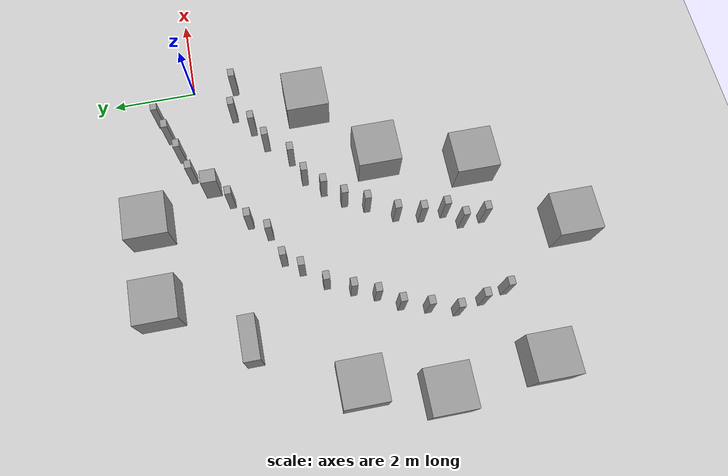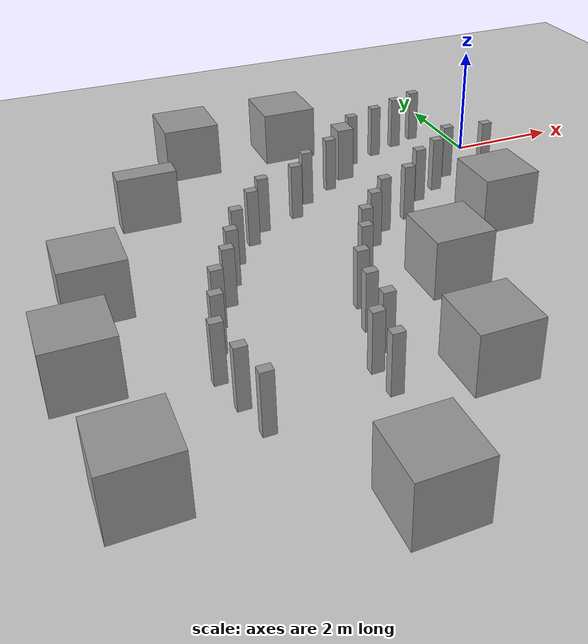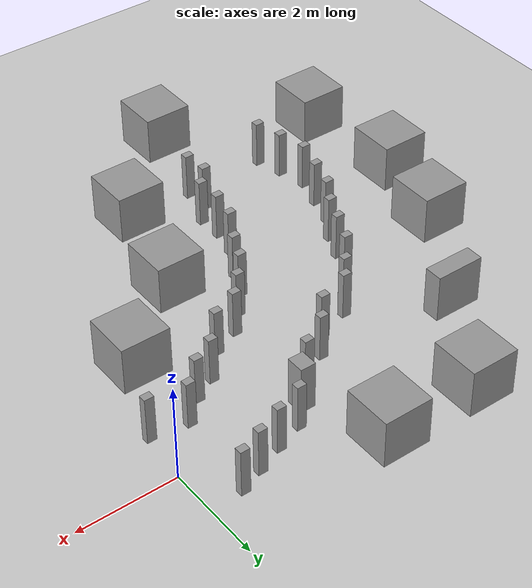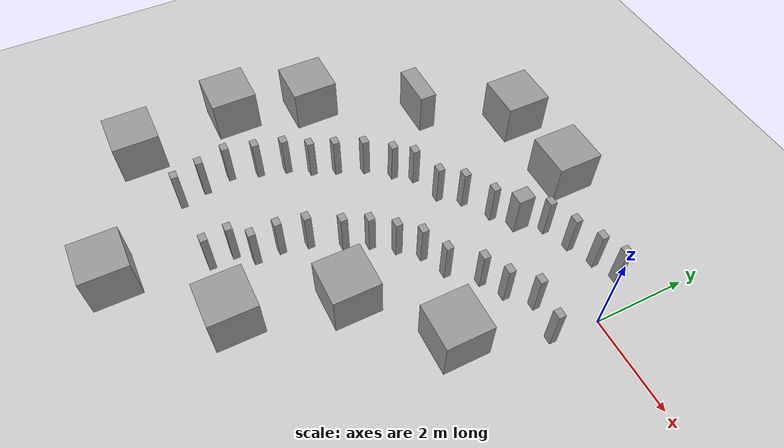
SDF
<sdf version="1.6">
 <world name="default">
  <light name="sun" type="directional">
   <pose>0 0 10 0 -0 0</pose>
   <diffuse>0.8 0.8 0.8 1</diffuse>
   <specular>0.1 0.1 0.1 1</specular>
   <attenuation>
    <range>1000</range>
    <constant>0.9</constant>
    <linear>0.01</linear>
    <quadratic>0.001</quadratic>
   </attenuation>
   <direction>-0.5 0.5 -1</direction>
  </light>
  <model name="ground_plane">
   <static>1</static>
   <link name="link">
    <collision name="collision">
     <geometry><plane><normal>0 0 1</normal><size>100 100</size></plane></geometry>
     <surface><friction><ode><mu>100</mu><mu2>50</mu2></ode></friction></surface>
    </collision>
    <visual name="visual">
     <cast_shadows>0</cast_shadows>
     <geometry><plane><normal>0 0 1</normal><size>100 100</size></plane></geometry>
     <material>
      <script><uri>file://media/materials/scripts/gazebo.material</uri><name>Gazebo/Grey</name></script>
     </material>
    </visual>
   </link>
  </model>
  <gravity>0 0 -9.8</gravity>
  <magnetic_field>6e-06 2.3e-05 -4.2e-05</magnetic_field>
  <atmosphere type="adiabatic"/>
  <physics name="default_physics" default="0" type="ode">
   <max_step_size>0.001</max_step_size>
   <real_time_factor>1</real_time_factor>
   <real_time_update_rate>1000</real_time_update_rate>
  </physics>
  <scene><ambient>0.4 0.4 0.4 1</ambient><background>0.7 0.7 0.7 1</background><shadows>1</shadows></scene>
  <spherical_coordinates>
   <surface_model>EARTH_WGS84</surface_model>
   <latitude_deg>0</latitude_deg>
   <longitude_deg>0</longitude_deg>
   <elevation>0</elevation>
   <heading_deg>0</heading_deg>
  </spherical_coordinates>
  <model name="unit_box_0_clone">
   <pose>-2.29678 0.276489 0.5 -0 1e-06 -0.000139</pose>
   <link name="link">
    <inertial>
     <mass>1</mass>
     <inertia>
      <ixx>0.166667</ixx>
      <ixy>0</ixy>
      <ixz>0</ixz>
      <iyy>0.166667</iyy>
      <iyz>0</iyz>
      <izz>0.166667</izz>
     </inertia>
    </inertial>
    <collision name="collision"><geometry><box><size>0.193042 0.14982 1</size></box></geometry></collision>
    <visual name="visual">
     <geometry><box><size>0.193042 0.14982 1</size></box></geometry>
     <material>
      <script><name>Gazebo/Grey</name><uri>file://media/materials/scripts/gazebo.material</uri></script>
     </material>
    </visual>
   </link>
  </model>
  <model name="unit_box_0_clone_clone">
   <pose>-1.71594 0.483045 0.5 5e-06 -1e-06 -0.000106</pose>
   <link name="link">
    <inertial>
     <mass>1</mass>
     <inertia>
      <ixx>0.166667</ixx>
      <ixy>0</ixy>
      <ixz>0</ixz>
      <iyy>0.166667</iyy>
      <iyz>0</iyz>
      <izz>0.166667</izz>
     </inertia>
    </inertial>
    <collision name="collision"><geometry><box><size>0.193042 0.14982 1</size></box></geometry></collision>
    <visual name="visual">
     <geometry><box><size>0.193042 0.14982 1</size></box></geometry>
     <material>
      <script><name>Gazebo/Grey</name><uri>file://media/materials/scripts/gazebo.material</uri></script>
     </material>
    </visual>
   </link>
  </model>
  <model name="unit_box_0_clone_clone_0">
   <pose>-1.16439 0.705938 0.5 1e-06 4e-06 -0.000367</pose>
   <link name="link">
    <inertial>
     <mass>1</mass>
     <inertia>
      <ixx>0.166667</ixx>
      <ixy>0</ixy>
      <ixz>0</ixz>
      <iyy>0.166667</iyy>
      <iyz>0</iyz>
      <izz>0.166667</izz>
     </inertia>
    </inertial>
    <collision name="collision"><geometry><box><size>0.193042 0.14982 1</size></box></geometry></collision>
    <visual name="visual">
     <geometry><box><size>0.193042 0.14982 1</size></box></geometry>
     <material>
      <script><name>Gazebo/Grey</name><uri>file://media/materials/scripts/gazebo.material</uri></script>
     </material>
    </visual>
   </link>
  </model>
  <model name="unit_box_0_clone_clone_1">
   <pose>-0.673132 0.897237 0.5 0 -4e-06 4.9e-05</pose>
   <link name="link">
    <inertial>
     <mass>1</mass>
     <inertia>
      <ixx>0.166667</ixx>
      <ixy>0</ixy>
      <ixz>0</ixz>
      <iyy>0.166667</iyy>
      <iyz>0</iyz>
      <izz>0.166667</izz>
     </inertia>
    </inertial>
    <collision name="collision"><geometry><box><size>0.193042 0.14982 1</size></box></geometry></collision>
    <visual name="visual">
     <geometry><box><size>0.193042 0.14982 1</size></box></geometry>
     <material>
      <script><name>Gazebo/Grey</name><uri>file://media/materials/scripts/gazebo.material</uri></script>
     </material>
    </visual>
   </link>
  </model>
  <model name="unit_box_0_clone_clone_2">
   <pose>-0.116064 -1.02379 0.5 0 -0 0.000279</pose>
   <link name="link">
    <inertial>
     <mass>1</mass>
     <inertia>
      <ixx>0.166667</ixx>
      <ixy>0</ixy>
      <ixz>0</ixz>
      <iyy>0.166667</iyy>
      <iyz>0</iyz>
      <izz>0.166667</izz>
     </inertia>
    </inertial>
    <collision name="collision"><geometry><box><size>0.193042 0.14982 1</size></box></geometry></collision>
    <visual name="visual">
     <geometry><box><size>0.193042 0.14982 1</size></box></geometry>
     <material>
      <script><name>Gazebo/Grey</name><uri>file://media/materials/scripts/gazebo.material</uri></script>
     </material>
    </visual>
   </link>
  </model>
  <model name="unit_box_0_clone_clone_3">
   <pose>-0.864702 -0.906515 0.500001 2e-06 1e-05 0.000264</pose>
   <link name="link">
    <inertial>
     <mass>1</mass>
     <inertia>
      <ixx>0.166667</ixx>
      <ixy>0</ixy>
      <ixz>0</ixz>
      <iyy>0.166667</iyy>
      <iyz>0</iyz>
      <izz>0.166667</izz>
     </inertia>
    </inertial>
    <collision name="collision"><geometry><box><size>0.193042 0.14982 1</size></box></geometry></collision>
    <visual name="visual">
     <geometry><box><size>0.193042 0.14982 1</size></box></geometry>
     <material>
      <script><name>Gazebo/Grey</name><uri>file://media/materials/scripts/gazebo.material</uri></script>
     </material>
    </visual>
   </link>
  </model>
  <model name="unit_box_0_clone_clone_4">
   <pose>-1.30964 -1.31389 0.499991 0 6e-06 -0.000119</pose>
   <link name="link">
    <inertial>
     <mass>1</mass>
     <inertia>
      <ixx>0.166667</ixx>
      <ixy>0</ixy>
      <ixz>0</ixz>
      <iyy>0.166667</iyy>
      <iyz>0</iyz>
      <izz>0.166667</izz>
     </inertia>
    </inertial>
    <collision name="collision"><geometry><box><size>0.193042 0.14982 1</size></box></geometry></collision>
    <visual name="visual">
     <geometry><box><size>0.193042 0.14982 1</size></box></geometry>
     <material>
      <script><name>Gazebo/Grey</name><uri>file://media/materials/scripts/gazebo.material</uri></script>
     </material>
    </visual>
   </link>
  </model>
  <model name="unit_box_0_clone_clone_5">
   <pose>-3.09517 -0.53898 0.5 0 -0 5.1e-05</pose>
   <link name="link">
    <inertial>
     <mass>1</mass>
     <inertia>
      <ixx>0.166667</ixx>
      <ixy>0</ixy>
      <ixz>0</ixz>
      <iyy>0.166667</iyy>
      <iyz>0</iyz>
      <izz>0.166667</izz>
     </inertia>
    </inertial>
    <collision name="collision"><geometry><box><size>0.193042 0.14982 1</size></box></geometry></collision>
    <visual name="visual">
     <geometry><box><size>0.193042 0.14982 1</size></box></geometry>
     <material>
      <script><name>Gazebo/Grey</name><uri>file://media/materials/scripts/gazebo.material</uri></script>
     </material>
    </visual>
   </link>
  </model>
  <model name="unit_box_0_clone_clone_6">
   <pose>-1.78965 -1.56985 0.499997 -1e-06 3e-06 -0.000151</pose>
   <link name="link">
    <inertial>
     <mass>1</mass>
     <inertia>
      <ixx>0.166667</ixx>
      <ixy>0</ixy>
      <ixz>0</ixz>
      <iyy>0.166667</iyy>
      <iyz>0</iyz>
      <izz>0.166667</izz>
     </inertia>
    </inertial>
    <collision name="collision"><geometry><box><size>0.193042 0.14982 1</size></box></geometry></collision>
    <visual name="visual">
     <geometry><box><size>0.193042 0.14982 1</size></box></geometry>
     <material>
      <script><name>Gazebo/Grey</name><uri>file://media/materials/scripts/gazebo.material</uri></script>
     </material>
    </visual>
   </link>
  </model>
  <model name="unit_box_0_clone_clone_7">
   <pose>-3.69032 -0.885577 0.5 0 -1e-06 -6.5e-05</pose>
   <link name="link">
    <inertial>
     <mass>1</mass>
     <inertia>
      <ixx>0.166667</ixx>
      <ixy>0</ixy>
      <ixz>0</ixz>
      <iyy>0.166667</iyy>
      <iyz>0</iyz>
      <izz>0.166667</izz>
     </inertia>
    </inertial>
    <collision name="collision"><geometry><box><size>0.193042 0.14982 1</size></box></geometry></collision>
    <visual name="visual">
     <geometry><box><size>0.193042 0.14982 1</size></box></geometry>
     <material>
      <script><name>Gazebo/Grey</name><uri>file://media/materials/scripts/gazebo.material</uri></script>
     </material>
    </visual>
   </link>
  </model>
  <model name="unit_box_0_clone_clone_8">
   <pose>-2.27766 -2.09842 0.5 0 -1e-06 -6.5e-05</pose>
   <link name="link">
    <inertial>
     <mass>1</mass>
     <inertia>
      <ixx>0.166667</ixx>
      <ixy>0</ixy>
      <ixz>0</ixz>
      <iyy>0.166667</iyy>
      <iyz>0</iyz>
      <izz>0.166667</izz>
     </inertia>
    </inertial>
    <collision name="collision"><geometry><box><size>0.193042 0.14982 1</size></box></geometry></collision>
    <visual name="visual">
     <geometry><box><size>0.193042 0.14982 1</size></box></geometry>
     <material>
      <script><name>Gazebo/Grey</name><uri>file://media/materials/scripts/gazebo.material</uri></script>
     </material>
    </visual>
   </link>
  </model>
  <model name="unit_box_0_clone_clone_9">
   <pose>-4.04792 -1.30155 0.499997 -1e-06 3e-06 0.000226</pose>
   <link name="link">
    <inertial>
     <mass>1</mass>
     <inertia>
      <ixx>0.166667</ixx>
      <ixy>0</ixy>
      <ixz>0</ixz>
      <iyy>0.166667</iyy>
      <iyz>0</iyz>
      <izz>0.166667</izz>
     </inertia>
    </inertial>
    <collision name="collision"><geometry><box><size>0.193042 0.14982 1</size></box></geometry></collision>
    <visual name="visual">
     <geometry><box><size>0.193042 0.14982 1</size></box></geometry>
     <material>
      <script><name>Gazebo/Grey</name><uri>file://media/materials/scripts/gazebo.material</uri></script>
     </material>
    </visual>
   </link>
  </model>
  <model name="unit_box_0_clone_clone_10">
   <pose>-2.84071 -2.32712 0.500001 1.1e-05 5e-06 -5.7e-05</pose>
   <link name="link">
    <inertial>
     <mass>1</mass>
     <inertia>
      <ixx>0.166667</ixx>
      <ixy>0</ixy>
      <ixz>0</ixz>
      <iyy>0.166667</iyy>
      <iyz>0</iyz>
      <izz>0.166667</izz>
     </inertia>
    </inertial>
    <collision name="collision"><geometry><box><size>0.193042 0.14982 1</size></box></geometry></collision>
    <visual name="visual">
     <geometry><box><size>0.193042 0.14982 1</size></box></geometry>
     <material>
      <script><name>Gazebo/Grey</name><uri>file://media/materials/scripts/gazebo.material</uri></script>
     </material>
    </visual>
   </link>
  </model>
  <model name="unit_box_0_clone_clone_11">
   <pose>-4.72703 -1.52395 0.499991 0 2e-06 1e-06</pose>
   <link name="link">
    <inertial>
     <mass>1</mass>
     <inertia>
      <ixx>0.166667</ixx>
      <ixy>0</ixy>
      <ixz>0</ixz>
      <iyy>0.166667</iyy>
      <iyz>0</iyz>
      <izz>0.166667</izz>
     </inertia>
    </inertial>
    <collision name="collision"><geometry><box><size>0.193042 0.14982 1</size></box></geometry></collision>
    <visual name="visual">
     <geometry><box><size>0.193042 0.14982 1</size></box></geometry>
     <material>
      <script><name>Gazebo/Grey</name><uri>file://media/materials/scripts/gazebo.material</uri></script>
     </material>
    </visual>
   </link>
  </model>
  <model name="unit_box_0_clone_clone_12">
   <pose>-3.1988 -2.71675 0.5 -4e-06 -4e-06 0.000324</pose>
   <link name="link">
    <inertial>
     <mass>1</mass>
     <inertia>
      <ixx>0.166667</ixx>
      <ixy>0</ixy>
      <ixz>0</ixz>
      <iyy>0.166667</iyy>
      <iyz>0</iyz>
      <izz>0.166667</izz>
     </inertia>
    </inertial>
    <collision name="collision"><geometry><box><size>0.193042 0.14982 1</size></box></geometry></collision>
    <visual name="visual">
     <geometry><box><size>0.193042 0.14982 1</size></box></geometry>
     <material>
      <script><name>Gazebo/Grey</name><uri>file://media/materials/scripts/gazebo.material</uri></script>
     </material>
    </visual>
   </link>
  </model>
  <model name="unit_box_0_clone_clone_13">
   <pose>-5.02827 -1.88904 0.5 3e-06 -0 6e-05</pose>
   <link name="link">
    <inertial>
     <mass>1</mass>
     <inertia>
      <ixx>0.166667</ixx>
      <ixy>0</ixy>
      <ixz>0</ixz>
      <iyy>0.166667</iyy>
      <iyz>0</iyz>
      <izz>0.166667</izz>
     </inertia>
    </inertial>
    <collision name="collision"><geometry><box><size>0.193042 0.14982 1</size></box></geometry></collision>
    <visual name="visual">
     <geometry><box><size>0.193042 0.14982 1</size></box></geometry>
     <material>
      <script><name>Gazebo/Grey</name><uri>file://media/materials/scripts/gazebo.material</uri></script>
     </material>
    </visual>
   </link>
  </model>
  <model name="unit_box_0_clone_clone_14">
   <pose>-3.55459 -3.14499 0.500001 -5e-06 -2e-06 -9.7e-05</pose>
   <link name="link">
    <inertial>
     <mass>1</mass>
     <inertia>
      <ixx>0.166667</ixx>
      <ixy>0</ixy>
      <ixz>0</ixz>
      <iyy>0.166667</iyy>
      <iyz>0</iyz>
      <izz>0.166667</izz>
     </inertia>
    </inertial>
    <collision name="collision"><geometry><box><size>0.193042 0.14982 1</size></box></geometry></collision>
    <visual name="visual">
     <geometry><box><size>0.193042 0.14982 1</size></box></geometry>
     <material>
      <script><name>Gazebo/Grey</name><uri>file://media/materials/scripts/gazebo.material</uri></script>
     </material>
    </visual>
   </link>
  </model>
  <model name="unit_box_0_clone_clone_15">
   <pose>-5.44103 -2.37763 0.500001 -4e-06 -7e-06 -0.000242</pose>
   <link name="link">
    <inertial>
     <mass>1</mass>
     <inertia>
      <ixx>0.166667</ixx>
      <ixy>0</ixy>
      <ixz>0</ixz>
      <iyy>0.166667</iyy>
      <iyz>0</iyz>
      <izz>0.166667</izz>
     </inertia>
    </inertial>
    <collision name="collision"><geometry><box><size>0.193042 0.14982 1</size></box></geometry></collision>
    <visual name="visual">
     <geometry><box><size>0.193042 0.14982 1</size></box></geometry>
     <material>
      <script><name>Gazebo/Grey</name><uri>file://media/materials/scripts/gazebo.material</uri></script>
     </material>
    </visual>
   </link>
  </model>
  <model name="unit_box_0_clone_clone_16">
   <pose>-3.78081 -3.63765 0.5 -0 -3e-06 -0.000222</pose>
   <link name="link">
    <inertial>
     <mass>1</mass>
     <inertia>
      <ixx>0.166667</ixx>
      <ixy>0</ixy>
      <ixz>0</ixz>
      <iyy>0.166667</iyy>
      <iyz>0</iyz>
      <izz>0.166667</izz>
     </inertia>
    </inertial>
    <collision name="collision"><geometry><box><size>0.193042 0.14982 1</size></box></geometry></collision>
    <visual name="visual">
     <geometry><box><size>0.193042 0.14982 1</size></box></geometry>
     <material>
      <script><name>Gazebo/Grey</name><uri>file://media/materials/scripts/gazebo.material</uri></script>
     </material>
    </visual>
   </link>
  </model>
  <model name="unit_box_0_clone_clone_17">
   <pose>-5.69917 -2.94549 0.5 -1e-06 2e-06 0.000104</pose>
   <link name="link">
    <inertial>
     <mass>1</mass>
     <inertia>
      <ixx>0.166667</ixx>
      <ixy>0</ixy>
      <ixz>0</ixz>
      <iyy>0.166667</iyy>
      <iyz>0</iyz>
      <izz>0.166667</izz>
     </inertia>
    </inertial>
    <collision name="collision"><geometry><box><size>0.193042 0.14982 1</size></box></geometry></collision>
    <visual name="visual">
     <geometry><box><size>0.193042 0.14982 1</size></box></geometry>
     <material>
      <script><name>Gazebo/Grey</name><uri>file://media/materials/scripts/gazebo.material</uri></script>
     </material>
    </visual>
   </link>
  </model>
  <model name="unit_box_0_clone_clone_18">
   <pose>-4.13334 -4.2634 0.500001 -6e-06 -1e-05 -0.000146</pose>
   <link name="link">
    <inertial>
     <mass>1</mass>
     <inertia>
      <ixx>0.166667</ixx>
      <ixy>0</ixy>
      <ixz>0</ixz>
      <iyy>0.166667</iyy>
      <iyz>0</iyz>
      <izz>0.166667</izz>
     </inertia>
    </inertial>
    <collision name="collision"><geometry><box><size>0.193042 0.14982 1</size></box></geometry></collision>
    <visual name="visual">
     <geometry><box><size>0.193042 0.14982 1</size></box></geometry>
     <material>
      <script><name>Gazebo/Grey</name><uri>file://media/materials/scripts/gazebo.material</uri></script>
     </material>
    </visual>
   </link>
  </model>
  <model name="unit_box_0_clone_clone_19">
   <pose>-5.9119 -3.44619 0.5 2e-06 -3e-06 -3.9e-05</pose>
   <link name="link">
    <inertial>
     <mass>1</mass>
     <inertia>
      <ixx>0.166667</ixx>
      <ixy>0</ixy>
      <ixz>0</ixz>
      <iyy>0.166667</iyy>
      <iyz>0</iyz>
      <izz>0.166667</izz>
     </inertia>
    </inertial>
    <collision name="collision"><geometry><box><size>0.193042 0.14982 1</size></box></geometry></collision>
    <visual name="visual">
     <geometry><box><size>0.193042 0.14982 1</size></box></geometry>
     <material>
      <script><name>Gazebo/Grey</name><uri>file://media/materials/scripts/gazebo.material</uri></script>
     </material>
    </visual>
   </link>
  </model>
  <model name="unit_box_0_clone_clone_20">
   <pose>-6.22107 -3.9243 0.5 1e-06 -3e-06 7.6e-05</pose>
   <link name="link">
    <inertial>
     <mass>1</mass>
     <inertia>
      <ixx>0.166667</ixx>
      <ixy>0</ixy>
      <ixz>0</ixz>
      <iyy>0.166667</iyy>
      <iyz>0</iyz>
      <izz>0.166667</izz>
     </inertia>
    </inertial>
    <collision name="collision"><geometry><box><size>0.193042 0.14982 1</size></box></geometry></collision>
    <visual name="visual">
     <geometry><box><size>0.193042 0.14982 1</size></box></geometry>
     <material>
      <script><name>Gazebo/Grey</name><uri>file://media/materials/scripts/gazebo.material</uri></script>
     </material>
    </visual>
   </link>
  </model>
  <model name="unit_box_0_clone_clone_21">
   <pose>-4.25924 -4.83716 0.5 0 -1e-06 -1.6e-05</pose>
   <link name="link">
    <inertial>
     <mass>1</mass>
     <inertia>
      <ixx>0.166667</ixx>
      <ixy>0</ixy>
      <ixz>0</ixz>
      <iyy>0.166667</iyy>
      <iyz>0</iyz>
      <izz>0.166667</izz>
     </inertia>
    </inertial>
    <collision name="collision"><geometry><box><size>0.193042 0.14982 1</size></box></geometry></collision>
    <visual name="visual">
     <geometry><box><size>0.193042 0.14982 1</size></box></geometry>
     <material>
      <script><name>Gazebo/Grey</name><uri>file://media/materials/scripts/gazebo.material</uri></script>
     </material>
    </visual>
   </link>
  </model>
  <model name="unit_box_0_clone_clone_22">
   <pose>-6.39614 -4.51386 0.5 1e-06 2e-06 -0.000152</pose>
   <link name="link">
    <inertial>
     <mass>1</mass>
     <inertia>
      <ixx>0.166667</ixx>
      <ixy>0</ixy>
      <ixz>0</ixz>
      <iyy>0.166667</iyy>
      <iyz>0</iyz>
      <izz>0.166667</izz>
     </inertia>
    </inertial>
    <collision name="collision"><geometry><box><size>0.193042 0.14982 1</size></box></geometry></collision>
    <visual name="visual">
     <geometry><box><size>0.193042 0.14982 1</size></box></geometry>
     <material>
      <script><name>Gazebo/Grey</name><uri>file://media/materials/scripts/gazebo.material</uri></script>
     </material>
    </visual>
   </link>
  </model>
  <model name="unit_box_0_clone_clone_23">
   <pose>-6.5778 -5.12485 0.500002 1.6e-05 -1e-05 9.5e-05</pose>
   <link name="link">
    <inertial>
     <mass>1</mass>
     <inertia>
      <ixx>0.166667</ixx>
      <ixy>0</ixy>
      <ixz>0</ixz>
      <iyy>0.166667</iyy>
      <iyz>0</iyz>
      <izz>0.166667</izz>
     </inertia>
    </inertial>
    <collision name="collision"><geometry><box><size>0.193042 0.14982 1</size></box></geometry></collision>
    <visual name="visual">
     <geometry><box><size>0.193042 0.14982 1</size></box></geometry>
     <material>
      <script><name>Gazebo/Grey</name><uri>file://media/materials/scripts/gazebo.material</uri></script>
     </material>
    </visual>
   </link>
  </model>
  <model name="unit_box_0_clone_clone_24">
   <pose>-4.25012 -5.37785 0.5 -1e-06 -2e-06 -0.000168</pose>
   <link name="link">
    <inertial>
     <mass>1</mass>
     <inertia>
      <ixx>0.166667</ixx>
      <ixy>0</ixy>
      <ixz>0</ixz>
      <iyy>0.166667</iyy>
      <iyz>0</iyz>
      <izz>0.166667</izz>
     </inertia>
    </inertial>
    <collision name="collision"><geometry><box><size>0.193042 0.14982 1</size></box></geometry></collision>
    <visual name="visual">
     <geometry><box><size>0.193042 0.14982 1</size></box></geometry>
     <material>
      <script><name>Gazebo/Grey</name><uri>file://media/materials/scripts/gazebo.material</uri></script>
     </material>
    </visual>
   </link>
  </model>
  <model name="unit_box_0_clone_clone_25">
   <pose>-6.44936 -5.72753 0.5 0 -1e-06 -0.00014</pose>
   <link name="link">
    <inertial>
     <mass>1</mass>
     <inertia>
      <ixx>0.166667</ixx>
      <ixy>0</ixy>
      <ixz>0</ixz>
      <iyy>0.166667</iyy>
      <iyz>0</iyz>
      <izz>0.166667</izz>
     </inertia>
    </inertial>
    <collision name="collision"><geometry><box><size>0.193042 0.14982 1</size></box></geometry></collision>
    <visual name="visual">
     <geometry><box><size>0.193042 0.14982 1</size></box></geometry>
     <material>
      <script><name>Gazebo/Grey</name><uri>file://media/materials/scripts/gazebo.material</uri></script>
     </material>
    </visual>
   </link>
  </model>
  <model name="unit_box_0_clone_clone_26">
   <pose>-4.57424 -5.72892 0.5 5e-06 9e-06 -0.00026</pose>
   <link name="link">
    <inertial>
     <mass>1</mass>
     <inertia>
      <ixx>0.166667</ixx>
      <ixy>0</ixy>
      <ixz>0</ixz>
      <iyy>0.166667</iyy>
      <iyz>0</iyz>
      <izz>0.166667</izz>
     </inertia>
    </inertial>
    <collision name="collision"><geometry><box><size>0.193042 0.14982 1</size></box></geometry></collision>
    <visual name="visual">
     <geometry><box><size>0.193042 0.14982 1</size></box></geometry>
     <material>
      <script><name>Gazebo/Grey</name><uri>file://media/materials/scripts/gazebo.material</uri></script>
     </material>
    </visual>
   </link>
  </model>
  <model name="unit_box_0_clone_clone_27">
   <pose>-6.30579 -6.29767 0.5 -1e-06 -0 -0.000216</pose>
   <link name="link">
    <inertial>
     <mass>1</mass>
     <inertia>
      <ixx>0.166667</ixx>
      <ixy>0</ixy>
      <ixz>0</ixz>
      <iyy>0.166667</iyy>
      <iyz>0</iyz>
      <izz>0.166667</izz>
     </inertia>
    </inertial>
    <collision name="collision"><geometry><box><size>0.193042 0.14982 1</size></box></geometry></collision>
    <visual name="visual">
     <geometry><box><size>0.193042 0.14982 1</size></box></geometry>
     <material>
      <script><name>Gazebo/Grey</name><uri>file://media/materials/scripts/gazebo.material</uri></script>
     </material>
    </visual>
   </link>
  </model>
  <model name="unit_box_0_clone_clone_28">
   <pose>-4.53905 -6.24452 0.5 1e-06 3e-06 -0.000219</pose>
   <link name="link">
    <inertial>
     <mass>1</mass>
     <inertia>
      <ixx>0.166667</ixx>
      <ixy>0</ixy>
      <ixz>0</ixz>
      <iyy>0.166667</iyy>
      <iyz>0</iyz>
      <izz>0.166667</izz>
     </inertia>
    </inertial>
    <collision name="collision"><geometry><box><size>0.193042 0.14982 1</size></box></geometry></collision>
    <visual name="visual">
     <geometry><box><size>0.193042 0.14982 1</size></box></geometry>
     <material>
      <script><name>Gazebo/Grey</name><uri>file://media/materials/scripts/gazebo.material</uri></script>
     </material>
    </visual>
   </link>
  </model>
  <model name="unit_box_1">
   <pose>-3.33309 1.38477 0.499995 1e-05 -0 0</pose>
   <link name="link">
    <inertial>
     <mass>1</mass>
     <inertia>
      <ixx>0.166667</ixx>
      <ixy>0</ixy>
      <ixz>0</ixz>
      <iyy>0.166667</iyy>
      <iyz>0</iyz>
      <izz>0.166667</izz>
     </inertia>
    </inertial>
    <collision name="collision"><geometry><box><size>1 1 1</size></box></geometry></collision>
    <visual name="visual">
     <geometry><box><size>1 1 1</size></box></geometry>
     <material>
      <script><name>Gazebo/Grey</name><uri>file://media/materials/scripts/gazebo.material</uri></script>
     </material>
    </visual>
   </link>
  </model>
  <model name="unit_box_2">
   <pose>-6.45788 -0.531944 0.5 0 0 -2e-05</pose>
   <link name="link">
    <inertial>
     <mass>1</mass>
     <inertia>
      <ixx>0.166667</ixx>
      <ixy>0</ixy>
      <ixz>0</ixz>
      <iyy>0.166667</iyy>
      <iyz>0</iyz>
      <izz>0.166667</izz>
     </inertia>
    </inertial>
    <collision name="collision"><geometry><box><size>1 0.373378 1</size></box></geometry></collision>
    <visual name="visual">
     <geometry><box><size>1 0.373378 1</size></box></geometry>
     <material>
      <script><name>Gazebo/Grey</name><uri>file://media/materials/scripts/gazebo.material</uri></script>
     </material>
    </visual>
   </link>
  </model>
  <model name="unit_box_3">
   <pose>-5.26713 1.37162 0.499995 0 1e-05 0</pose>
   <link name="link">
    <inertial>
     <mass>1</mass>
     <inertia>
      <ixx>0.166667</ixx>
      <ixy>0</ixy>
      <ixz>0</ixz>
      <iyy>0.166667</iyy>
      <iyz>0</iyz>
      <izz>0.166667</izz>
     </inertia>
    </inertial>
    <collision name="collision"><geometry><box><size>1 1 1</size></box></geometry></collision>
    <visual name="visual">
     <geometry><box><size>1 1 1</size></box></geometry>
     <material>
      <script><name>Gazebo/Grey</name><uri>file://media/materials/scripts/gazebo.material</uri></script>
     </material>
    </visual>
   </link>
  </model>
  <model name="unit_box_4">
   <pose>-7.78404 -2.71974 0.499995 1e-05 -0 0</pose>
   <link name="link">
    <inertial>
     <mass>1</mass>
     <inertia>
      <ixx>0.166667</ixx>
      <ixy>0</ixy>
      <ixz>0</ixz>
      <iyy>0.166667</iyy>
      <iyz>0</iyz>
      <izz>0.166667</izz>
     </inertia>
    </inertial>
    <collision name="collision"><geometry><box><size>1 1 1</size></box></geometry></collision>
    <visual name="visual">
     <geometry><box><size>1 1 1</size></box></geometry>
     <material>
      <script><name>Gazebo/Grey</name><uri>file://media/materials/scripts/gazebo.material</uri></script>
     </material>
    </visual>
   </link>
  </model>
  <model name="unit_box_5">
   <pose>-8.25872 -4.47379 0.499995 0 1e-05 0</pose>
   <link name="link">
    <inertial>
     <mass>1</mass>
     <inertia>
      <ixx>0.166667</ixx>
      <ixy>0</ixy>
      <ixz>0</ixz>
      <iyy>0.166667</iyy>
      <iyz>0</iyz>
      <izz>0.166667</izz>
     </inertia>
    </inertial>
    <collision name="collision"><geometry><box><size>1 1 1</size></box></geometry></collision>
    <visual name="visual">
     <geometry><box><size>1 1 1</size></box></geometry>
     <material>
      <script><name>Gazebo/Grey</name><uri>file://media/materials/scripts/gazebo.material</uri></script>
     </material>
    </visual>
   </link>
  </model>
  <model name="unit_box_6">
   <pose>-0.8735 -2.68981 0.499995 1e-05 -0 0</pose>
   <link name="link">
    <inertial>
     <mass>1</mass>
     <inertia>
      <ixx>0.166667</ixx>
      <ixy>0</ixy>
      <ixz>0</ixz>
      <iyy>0.166667</iyy>
      <iyz>0</iyz>
      <izz>0.166667</izz>
     </inertia>
    </inertial>
    <collision name="collision"><geometry><box><size>1 1 1</size></box></geometry></collision>
    <visual name="visual">
     <geometry><box><size>1 1 1</size></box></geometry>
     <material>
      <script><name>Gazebo/Grey</name><uri>file://media/materials/scripts/gazebo.material</uri></script>
     </material>
    </visual>
   </link>
  </model>
  <model name="unit_box_7">
   <pose>-2.56984 -4.09347 0.499995 0 1e-05 0</pose>
   <link name="link">
    <inertial>
     <mass>1</mass>
     <inertia>
      <ixx>0.166667</ixx>
      <ixy>0</ixy>
      <ixz>0</ixz>
      <iyy>0.166667</iyy>
      <iyz>0</iyz>
      <izz>0.166667</izz>
     </inertia>
    </inertial>
    <collision name="collision"><geometry><box><size>1 1 1</size></box></geometry></collision>
    <visual name="visual">
     <geometry><box><size>1 1 1</size></box></geometry>
     <material>
      <script><name>Gazebo/Grey</name><uri>file://media/materials/scripts/gazebo.material</uri></script>
     </material>
    </visual>
   </link>
  </model>
  <model name="unit_box_8">
   <pose>-3.14235 -6.27752 0.499995 1e-05 -0 0</pose>
   <link name="link">
    <inertial>
     <mass>1</mass>
     <inertia>
      <ixx>0.166667</ixx>
      <ixy>0</ixy>
      <ixz>0</ixz>
      <iyy>0.166667</iyy>
      <iyz>0</iyz>
      <izz>0.166667</izz>
     </inertia>
    </inertial>
    <collision name="collision"><geometry><box><size>1 1 1</size></box></geometry></collision>
    <visual name="visual">
     <geometry><box><size>1 1 1</size></box></geometry>
     <material>
      <script><name>Gazebo/Grey</name><uri>file://media/materials/scripts/gazebo.material</uri></script>
     </material>
    </visual>
   </link>
  </model>
  <model name="unit_box_9">
   <pose>-7.98883 -6.76828 0.499995 0 1e-05 0</pose>
   <link name="link">
    <inertial>
     <mass>1</mass>
     <inertia>
      <ixx>0.166667</ixx>
      <ixy>0</ixy>
      <ixz>0</ixz>
      <iyy>0.166667</iyy>
      <iyz>0</iyz>
      <izz>0.166667</izz>
     </inertia>
    </inertial>
    <collision name="collision"><geometry><box><size>1 1 1</size></box></geometry></collision>
    <visual name="visual">
     <geometry><box><size>1 1 1</size></box></geometry>
     <material>
      <script><name>Gazebo/Grey</name><uri>file://media/materials/scripts/gazebo.material</uri></script>
     </material>
    </visual>
   </link>
  </model>
  <model name="unit_box_10">
   <pose>-5.0274 -8.1466 0.499995 -1e-05 0 0</pose>
   <link name="link">
    <inertial>
     <mass>1</mass>
     <inertia>
      <ixx>0.166667</ixx>
      <ixy>0</ixy>
      <ixz>0</ixz>
      <iyy>0.166667</iyy>
      <iyz>0</iyz>
      <izz>0.166667</izz>
     </inertia>
    </inertial>
    <collision name="collision"><geometry><box><size>1 1 1</size></box></geometry></collision>
    <visual name="visual">
     <geometry><box><size>1 1 1</size></box></geometry>
     <material>
      <script><name>Gazebo/Grey</name><uri>file://media/materials/scripts/gazebo.material</uri></script>
     </material>
    </visual>
   </link>
  </model>
  <model name="unit_box_0">
   <pose>-2.67144 -0.140605 0.499999 -3e-06 -2e-06 1e-06</pose>
   <link name="link">
    <inertial>
     <mass>1</mass>
     <inertia>
      <ixx>0.166667</ixx>
      <ixy>0</ixy>
      <ixz>0</ixz>
      <iyy>0.166667</iyy>
      <iyz>0</iyz>
      <izz>0.166667</izz>
     </inertia>
    </inertial>
    <collision name="collision"><geometry><box><size>0.309915 0.363363 1</size></box></geometry></collision>
    <visual name="visual">
     <geometry><box><size>0.309915 0.363363 1</size></box></geometry>
     <material>
      <script><name>Gazebo/Grey</name><uri>file://media/materials/scripts/gazebo.material</uri></script>
     </material>
    </visual>
   </link>
  </model>
 </world>
</sdf>
